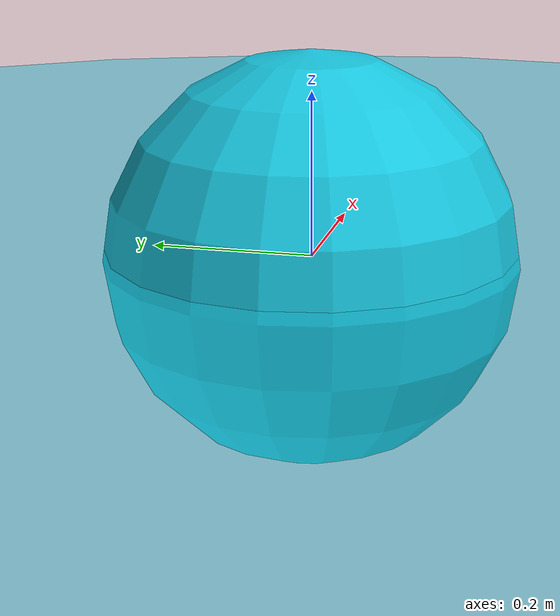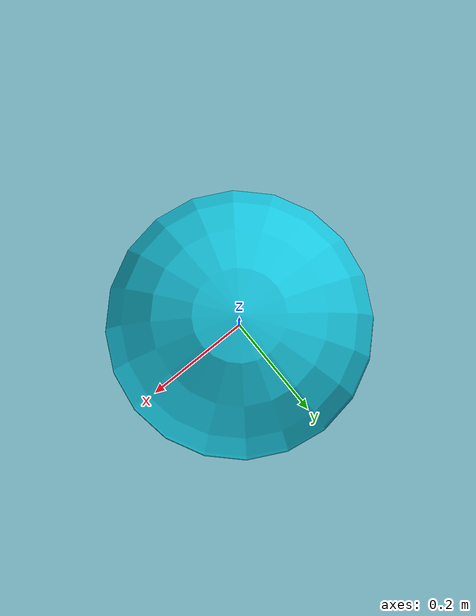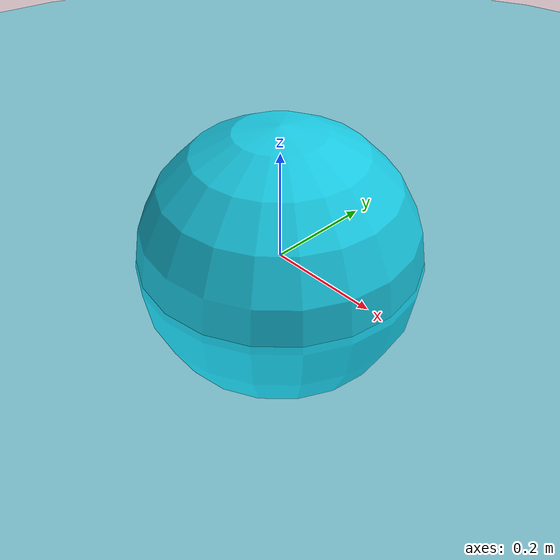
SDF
<?xml version="1.0" ?>
<sdf version="1.9">
  <model name="pulse_csi_0"><static>true</static><link name="l">
    <visual name="v"><geometry><cylinder><radius>1.5</radius><length>0.03</length></cylinder></geometry>
      <material><ambient>0.1 0.8 0.9 1</ambient><diffuse>0.1 0.8 0.9 1</diffuse><specular>0.1 0.1 0.1 1</specular><emissive>0.1 0.8 0.9 1</emissive></material><transparency>0.55</transparency><cast_shadows>false</cast_shadows></visual>
    <visual name="core"><geometry><sphere><radius>0.25</radius></sphere></geometry>
      <material><ambient>0.1 0.8 0.9 1</ambient><diffuse>0.1 0.8 0.9 1</diffuse><specular>0.1 0.1 0.1 1</specular><emissive>0.1 0.8 0.9 1</emissive></material><cast_shadows>false</cast_shadows></visual>
  </link></model>
</sdf>
